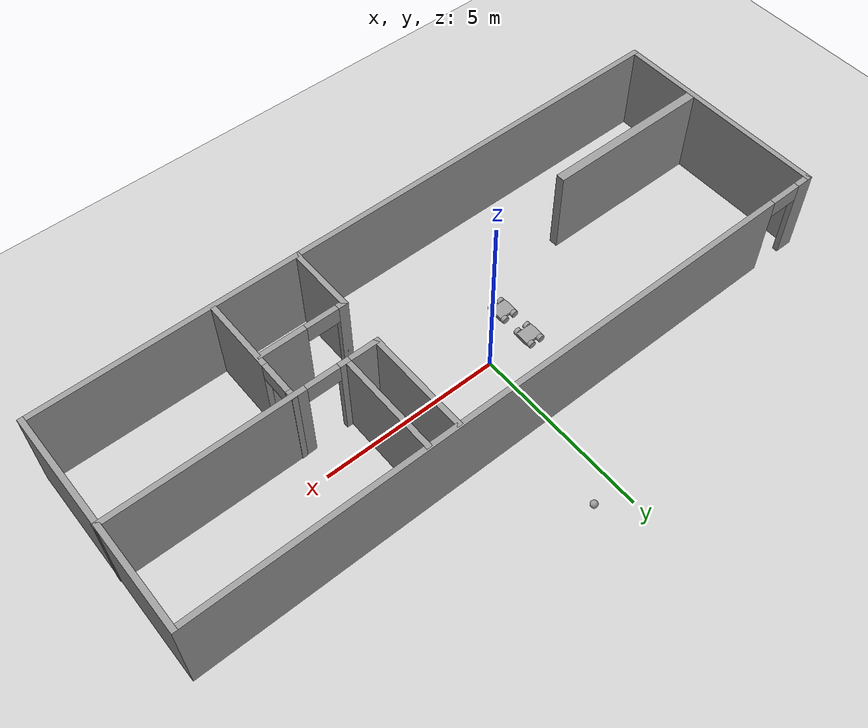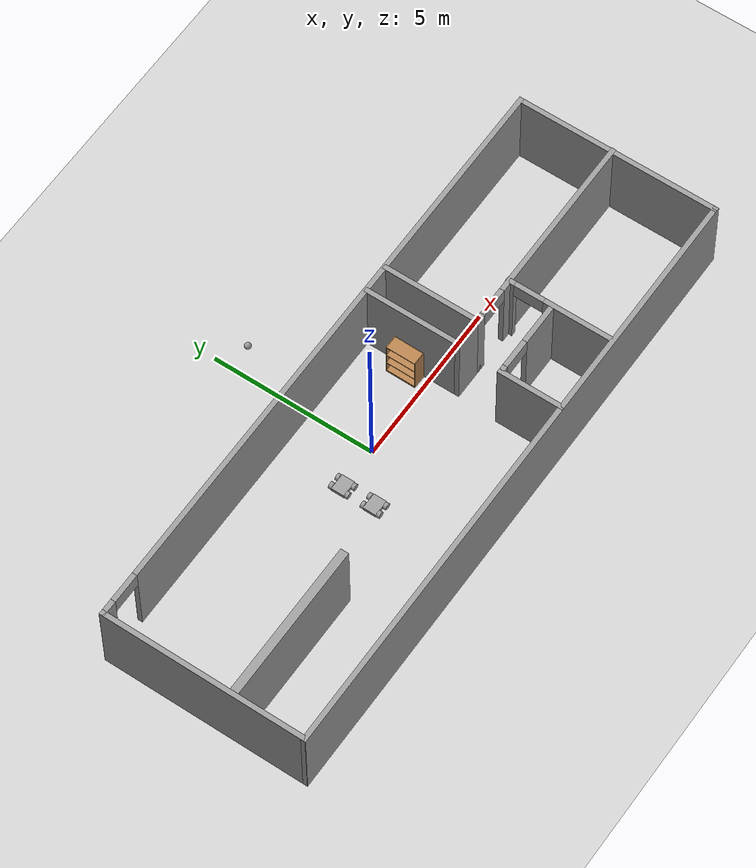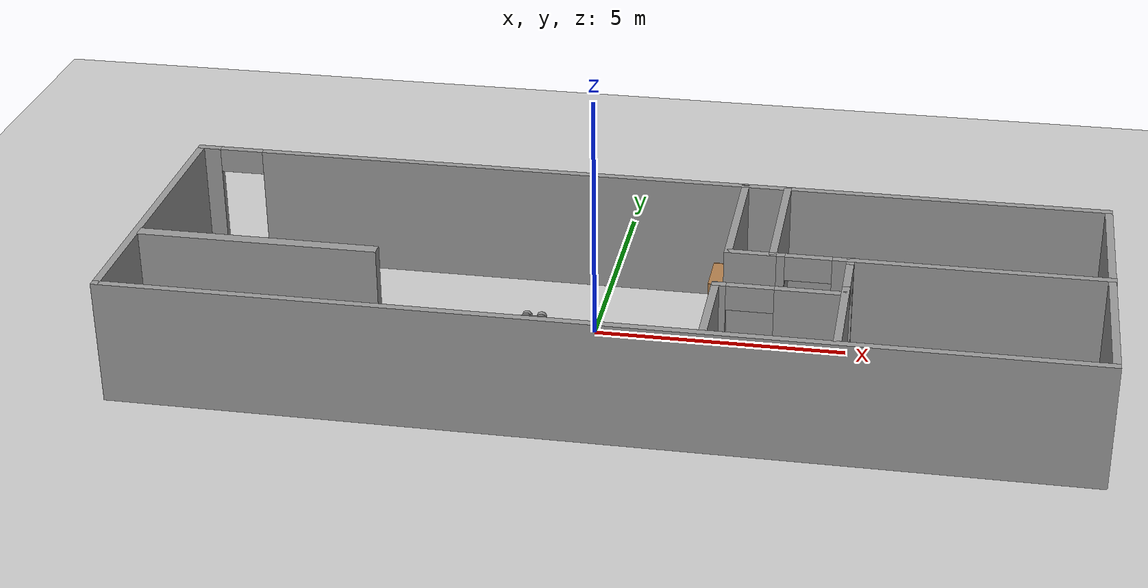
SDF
<sdf version="1.6">
 <world name="default">
  <plugin name="welcome_message" filename="libwelcome_message.so"/>
  <light name="sun" type="directional">
   <pose>0 0 10 0 -0 0</pose>
   <diffuse>0.8 0.8 0.8 1</diffuse>
   <specular>0.2 0.2 0.2 1</specular>
   <attenuation>
    <range>1000</range>
    <constant>0.9</constant>
    <linear>0.01</linear>
    <quadratic>0.001</quadratic>
   </attenuation>
   <direction>-0.5 0.1 -0.9</direction>
  </light>
  <model name="ground_plane">
   <static>1</static>
   <link name="link">
    <collision name="collision">
     <geometry><plane><normal>0 0 1</normal><size>100 100</size></plane></geometry>
     <surface>
      <contact><collide_bitmask>65535</collide_bitmask></contact>
      <friction><ode><mu>100</mu><mu2>50</mu2></ode></friction>
     </surface>
    </collision>
    <visual name="visual">
     <cast_shadows>0</cast_shadows>
     <geometry><plane><normal>0 0 1</normal><size>100 100</size></plane></geometry>
     <material>
      <script><uri>file://media/materials/scripts/gazebo.material</uri><name>Gazebo/Grey</name></script>
     </material>
    </visual>
   </link>
  </model>
  <gravity>0 0 -9.8</gravity>
  <magnetic_field>6e-06 2.3e-05 -4.2e-05</magnetic_field>
  <atmosphere type="adiabatic"/>
  <physics name="default_physics" default="0" type="ode">
   <max_step_size>0.001</max_step_size>
   <real_time_factor>1</real_time_factor>
   <real_time_update_rate>1000</real_time_update_rate>
  </physics>
  <scene><ambient>0.4 0.4 0.4 1</ambient><background>0.7 0.7 0.7 1</background><shadows>1</shadows></scene>
  <spherical_coordinates>
   <surface_model>EARTH_WGS84</surface_model>
   <latitude_deg>0</latitude_deg>
   <longitude_deg>0</longitude_deg>
   <elevation>0</elevation>
   <heading_deg>0</heading_deg>
  </spherical_coordinates>
  <model name="mybuilding">
   <pose>0.62409 -1.00677 0 0 -0 0</pose>
   <link name="Wall_11">
    <collision name="Wall_11_Collision">
     <geometry><box><size>3 0.15 2.5</size></box></geometry>
     <pose>0 0 1.25 0 -0 0</pose>
    </collision>
    <visual name="Wall_11_Visual">
     <pose>0 0 1.25 0 -0 0</pose>
     <geometry><box><size>3 0.15 2.5</size></box></geometry>
     <material>
      <script><uri>file://media/materials/scripts/gazebo.material</uri><name>Gazebo/Grey</name></script>
      <ambient>1 1 1 1</ambient>
     </material>
     <meta><layer>0</layer></meta>
    </visual>
    <pose>2.95755 1.58149 0 0 0 -1.5708</pose>
   </link>
   <link name="Wall_15">
    <pose>6.13255 0.156485 0 0 -0 0</pose>
    <visual name="Wall_15_Visual_0">
     <pose>-3.09582 0 1.25 0 -0 0</pose>
     <geometry><box><size>0.308364 0.15 2.5</size></box></geometry>
     <material>
      <script><uri>file://media/materials/scripts/gazebo.material</uri><name>Gazebo/Grey</name></script>
      <ambient>1 1 1 1</ambient>
     </material>
     <meta><layer>0</layer></meta>
    </visual>
    <collision name="Wall_15_Collision_0">
     <geometry><box><size>0.308364 0.15 2.5</size></box></geometry>
     <pose>-3.09582 0 1.25 0 -0 0</pose>
    </collision>
    <visual name="Wall_15_Visual_1">
     <pose>0.604182 0 1.25 0 -0 0</pose>
     <geometry><box><size>5.29164 0.15 2.5</size></box></geometry>
     <material>
      <script><uri>file://media/materials/scripts/gazebo.material</uri><name>Gazebo/Grey</name></script>
      <ambient>1 1 1 1</ambient>
     </material>
     <meta><layer>0</layer></meta>
    </visual>
    <collision name="Wall_15_Collision_1">
     <geometry><box><size>5.29164 0.15 2.5</size></box></geometry>
     <pose>0.604182 0 1.25 0 -0 0</pose>
    </collision>
    <visual name="Wall_15_Visual_2">
     <pose>-2.49164 0 2.25 0 -0 0</pose>
     <geometry><box><size>0.9 0.15 0.5</size></box></geometry>
     <material>
      <script><uri>file://media/materials/scripts/gazebo.material</uri><name>Gazebo/Grey</name></script>
      <ambient>1 1 1 1</ambient>
     </material>
     <meta><layer>0</layer></meta>
    </visual>
    <collision name="Wall_15_Collision_2">
     <geometry><box><size>0.9 0.15 0.5</size></box></geometry>
     <pose>-2.49164 0 2.25 0 -0 0</pose>
    </collision>
   </link>
   <link name="Wall_19">
    <pose>4.43626 -1.37998 0 0 0 -1.5708</pose>
    <visual name="Wall_19_Visual_0">
     <pose>-1.4913 0 1.25 0 -0 0</pose>
     <geometry><box><size>0.267395 0.15 2.5</size></box></geometry>
     <material>
      <script><uri>file://media/materials/scripts/gazebo.material</uri><name>Gazebo/Grey</name></script>
      <ambient>1 1 1 1</ambient>
     </material>
     <meta><layer>0</layer></meta>
    </visual>
    <collision name="Wall_19_Collision_0">
     <geometry><box><size>0.267395 0.15 2.5</size></box></geometry>
     <pose>-1.4913 0 1.25 0 -0 0</pose>
    </collision>
    <visual name="Wall_19_Visual_1">
     <pose>0.583697 0 1.25 0 -0 0</pose>
     <geometry><box><size>2.08261 0.15 2.5</size></box></geometry>
     <material>
      <script><uri>file://media/materials/scripts/gazebo.material</uri><name>Gazebo/Grey</name></script>
      <ambient>1 1 1 1</ambient>
     </material>
     <meta><layer>0</layer></meta>
    </visual>
    <collision name="Wall_19_Collision_1">
     <geometry><box><size>2.08261 0.15 2.5</size></box></geometry>
     <pose>0.583697 0 1.25 0 -0 0</pose>
    </collision>
    <visual name="Wall_19_Visual_2">
     <pose>-0.907605 0 2.25 0 -0 0</pose>
     <geometry><box><size>0.9 0.15 0.5</size></box></geometry>
     <material>
      <script><uri>file://media/materials/scripts/gazebo.material</uri><name>Gazebo/Grey</name></script>
      <ambient>1 1 1 1</ambient>
     </material>
     <meta><layer>0</layer></meta>
    </visual>
    <collision name="Wall_19_Collision_2">
     <geometry><box><size>0.9 0.15 0.5</size></box></geometry>
     <pose>-0.907605 0 2.25 0 -0 0</pose>
    </collision>
   </link>
   <link name="Wall_21">
    <collision name="Wall_21_Collision">
     <geometry><box><size>1 0.15 2.5</size></box></geometry>
     <pose>0 0 1.25 0 -0 0</pose>
    </collision>
    <visual name="Wall_21_Visual">
     <pose>0 0 1.25 0 -0 0</pose>
     <geometry><box><size>1 0.15 2.5</size></box></geometry>
     <material>
      <script><uri>file://media/materials/scripts/gazebo.material</uri><name>Gazebo/Grey</name></script>
      <ambient>1 1 1 1</ambient>
     </material>
     <meta><layer>0</layer></meta>
    </visual>
    <pose>2.53255 0.156485 0 0 -0 3.14159</pose>
   </link>
   <link name="Wall_22">
    <collision name="Wall_22_Collision">
     <geometry><box><size>3 0.15 2.5</size></box></geometry>
     <pose>0 0 1.25 0 -0 0</pose>
    </collision>
    <visual name="Wall_22_Visual">
     <pose>0 0 1.25 0 -0 0</pose>
     <geometry><box><size>3 0.15 2.5</size></box></geometry>
     <material>
      <script><uri>file://media/materials/scripts/gazebo.material</uri><name>Gazebo/Grey</name></script>
      <ambient>1 1 1 1</ambient>
     </material>
     <meta><layer>0</layer></meta>
    </visual>
    <pose>2.10755 1.58149 0 0 -0 1.5708</pose>
   </link>
   <link name="Wall_3">
    <collision name="Wall_3_Collision">
     <geometry><box><size>6.25 0.15 2.5</size></box></geometry>
     <pose>0 0 1.25 0 -0 0</pose>
    </collision>
    <visual name="Wall_3_Visual">
     <pose>0 0 1.25 0 -0 0</pose>
     <geometry><box><size>6.25 0.15 2.5</size></box></geometry>
     <material>
      <script><uri>file://media/materials/scripts/gazebo.material</uri><name>Gazebo/Grey</name></script>
      <ambient>1 1 1 1</ambient>
     </material>
     <meta><layer>0</layer></meta>
    </visual>
    <pose>-9.30738 0 0 0 0 -1.57085</pose>
   </link>
   <link name="Wall_31">
    <collision name="Wall_31_Collision">
     <geometry><box><size>2 0.15 2.5</size></box></geometry>
     <pose>0 0 1.25 0 -0 0</pose>
    </collision>
    <visual name="Wall_31_Visual">
     <pose>0 0 1.25 0 -0 0</pose>
     <geometry><box><size>2 0.15 2.5</size></box></geometry>
     <material>
      <script><uri>file://media/materials/scripts/gazebo.material</uri><name>Gazebo/Grey</name></script>
      <ambient>1 1 1 1</ambient>
     </material>
     <meta><layer>0</layer></meta>
    </visual>
    <pose>2.03504 -2.11336 0 0 -0 1.5708</pose>
   </link>
   <link name="Wall_32">
    <pose>3.21004 -1.18836 0 0 -0 0</pose>
    <visual name="Wall_32_Visual_0">
     <pose>-1.11393 0 1.25 0 -0 0</pose>
     <geometry><box><size>0.272132 0.15 2.5</size></box></geometry>
     <material>
      <script><uri>file://media/materials/scripts/gazebo.material</uri><name>Gazebo/Grey</name></script>
      <ambient>1 1 1 1</ambient>
     </material>
     <meta><layer>0</layer></meta>
    </visual>
    <collision name="Wall_32_Collision_0">
     <geometry><box><size>0.272132 0.15 2.5</size></box></geometry>
     <pose>-1.11393 0 1.25 0 -0 0</pose>
    </collision>
    <visual name="Wall_32_Visual_1">
     <pose>0.586066 0 1.25 0 -0 0</pose>
     <geometry><box><size>1.32787 0.15 2.5</size></box></geometry>
     <material>
      <script><uri>file://media/materials/scripts/gazebo.material</uri><name>Gazebo/Grey</name></script>
      <ambient>1 1 1 1</ambient>
     </material>
     <meta><layer>0</layer></meta>
    </visual>
    <collision name="Wall_32_Collision_1">
     <geometry><box><size>1.32787 0.15 2.5</size></box></geometry>
     <pose>0.586066 0 1.25 0 -0 0</pose>
    </collision>
    <visual name="Wall_32_Visual_2">
     <pose>-0.527868 0 2.25 0 -0 0</pose>
     <geometry><box><size>0.9 0.15 0.5</size></box></geometry>
     <material>
      <script><uri>file://media/materials/scripts/gazebo.material</uri><name>Gazebo/Grey</name></script>
      <ambient>1 1 1 1</ambient>
     </material>
     <meta><layer>0</layer></meta>
    </visual>
    <collision name="Wall_32_Collision_2">
     <geometry><box><size>0.9 0.15 0.5</size></box></geometry>
     <pose>-0.527868 0 2.25 0 -0 0</pose>
    </collision>
   </link>
   <link name="Wall_34">
    <collision name="Wall_34_Collision">
     <geometry><box><size>4.75 0.25 2.5</size></box></geometry>
     <pose>0 0 1.25 0 -0 0</pose>
    </collision>
    <visual name="Wall_34_Visual">
     <pose>0 0 1.25 0 -0 0</pose>
     <geometry><box><size>4.75 0.25 2.5</size></box></geometry>
     <material>
      <script><uri>file://media/materials/scripts/gazebo.material</uri><name>Gazebo/Grey</name></script>
      <ambient>1 1 1 1</ambient>
     </material>
     <meta><layer>0</layer></meta>
    </visual>
    <pose>-6.87721 -0.888578 0 0 -0 0</pose>
   </link>
   <link name="Wall_5">
    <pose>-0.007205 3.05003 0 0 -0 0</pose>
    <visual name="Wall_5_Visual_0">
     <pose>-9.12701 0 1.25 0 -0 0</pose>
     <geometry><box><size>0.495981 0.15 2.5</size></box></geometry>
     <material>
      <script><uri>file://media/materials/scripts/gazebo.material</uri><name>Gazebo/Grey</name></script>
      <ambient>1 1 1 1</ambient>
     </material>
     <meta><layer>0</layer></meta>
    </visual>
    <collision name="Wall_5_Collision_0">
     <geometry><box><size>0.495981 0.15 2.5</size></box></geometry>
     <pose>-9.12701 0 1.25 0 -0 0</pose>
    </collision>
    <visual name="Wall_5_Visual_1">
     <pose>0.697991 0 1.25 0 -0 0</pose>
     <geometry><box><size>17.354 0.15 2.5</size></box></geometry>
     <material>
      <script><uri>file://media/materials/scripts/gazebo.material</uri><name>Gazebo/Grey</name></script>
      <ambient>1 1 1 1</ambient>
     </material>
     <meta><layer>0</layer></meta>
    </visual>
    <collision name="Wall_5_Collision_1">
     <geometry><box><size>17.354 0.15 2.5</size></box></geometry>
     <pose>0.697991 0 1.25 0 -0 0</pose>
    </collision>
    <visual name="Wall_5_Visual_2">
     <pose>-8.42902 0 2.25 0 -0 0</pose>
     <geometry><box><size>0.9 0.15 0.5</size></box></geometry>
     <material>
      <script><uri>file://media/materials/scripts/gazebo.material</uri><name>Gazebo/Grey</name></script>
      <ambient>1 1 1 1</ambient>
     </material>
     <meta><layer>0</layer></meta>
    </visual>
    <collision name="Wall_5_Collision_2">
     <geometry><box><size>0.9 0.15 0.5</size></box></geometry>
     <pose>-8.42902 0 2.25 0 -0 0</pose>
    </collision>
   </link>
   <link name="Wall_7">
    <collision name="Wall_7_Collision">
     <geometry><box><size>6.25 0.15 2.5</size></box></geometry>
     <pose>0 0 1.25 0 -0 0</pose>
    </collision>
    <visual name="Wall_7_Visual">
     <pose>0 0 1.25 0 -0 0</pose>
     <geometry><box><size>6.25 0.15 2.5</size></box></geometry>
     <material>
      <script><uri>file://media/materials/scripts/gazebo.material</uri><name>Gazebo/Grey</name></script>
      <ambient>1 1 1 1</ambient>
     </material>
     <meta><layer>0</layer></meta>
    </visual>
    <pose>9.29279 2.5e-05 0 0 0 -1.5708</pose>
   </link>
   <link name="Wall_9">
    <collision name="Wall_9_Collision">
     <geometry><box><size>18.75 0.15 2.5</size></box></geometry>
     <pose>0 0 1.25 0 -0 0</pose>
    </collision>
    <visual name="Wall_9_Visual">
     <pose>0 0 1.25 0 -0 0</pose>
     <geometry><box><size>18.75 0.15 2.5</size></box></geometry>
     <material>
      <script><uri>file://media/materials/scripts/gazebo.material</uri><name>Gazebo/Grey</name></script>
      <ambient>1 1 1 1</ambient>
     </material>
     <meta><layer>0</layer></meta>
    </visual>
    <pose>-0.007545 -3.05003 0 0 -0 0</pose>
   </link>
   <static>1</static>
  </model>
  <model name="myrobot">
   <link name="link_0">
    <pose>0 0 0.1 0 -0 0</pose>
    <inertial>
     <mass>1</mass>
     <inertia>
      <ixx>0.166667</ixx>
      <ixy>0</ixy>
      <ixz>0</ixz>
      <iyy>0.166667</iyy>
      <iyz>0</iyz>
      <izz>0.166667</izz>
     </inertia>
    </inertial>
    <visual name="visual">
     <geometry><box><size>0.5 0.4 0.1</size></box></geometry>
     <material>
      <lighting>1</lighting>
      <script><uri>file://media/materials/scripts/gazebo.material</uri><name>Gazebo/Grey</name></script>
      <shader type="pixel"><normal_map>__default__</normal_map></shader>
      <ambient>0.3 0.3 0.3 1</ambient>
      <diffuse>0.7 0.7 0.7 1</diffuse>
      <specular>0.01 0.01 0.01 1</specular>
      <emissive>0 0 0 1</emissive>
     </material>
    </visual>
    <collision name="collision">
     <geometry><box><size>0.5 0.4 0.1</size></box></geometry>
     <surface>
      <friction>
       <ode><mu>1</mu><mu2>1</mu2><fdir1>0 0 0</fdir1><slip1>0</slip1><slip2>0</slip2></ode>
       <torsional>
        <coefficient>1</coefficient>
        <patch_radius>0</patch_radius>
        <surface_radius>0</surface_radius>
        <use_patch_radius>1</use_patch_radius>
        <ode><slip>0</slip></ode>
       </torsional>
      </friction>
      <bounce><restitution_coefficient>0</restitution_coefficient><threshold>1e+06</threshold></bounce>
      <contact>
       <collide_without_contact>0</collide_without_contact>
       <collide_without_contact_bitmask>1</collide_without_contact_bitmask>
       <collide_bitmask>1</collide_bitmask>
       <ode>
        <soft_cfm>0</soft_cfm>
        <soft_erp>0.2</soft_erp>
        <kp>1e+13</kp>
        <kd>1</kd>
        <max_vel>0.01</max_vel>
        <min_depth>0</min_depth>
       </ode>
       <bullet>
        <split_impulse>1</split_impulse>
        <split_impulse_penetration_threshold>-0.01</split_impulse_penetration_threshold>
        <soft_cfm>0</soft_cfm>
        <soft_erp>0.2</soft_erp>
        <kp>1e+13</kp>
        <kd>1</kd>
       </bullet>
      </contact>
     </surface>
    </collision>
   </link>
   <link name="link_3_clone">
    <pose>0.15 -0.25001 0.1 1.5707 -0 0</pose>
    <inertial>
     <mass>1</mass>
     <inertia><ixx>0.145833</ixx><ixy>0</ixy><ixz>0</ixz><iyy>0.145833</iyy><iyz>0</iyz><izz>0.125</izz></inertia>
    </inertial>
    <visual name="visual">
     <geometry><cylinder><radius>0.1</radius><length>0.1</length></cylinder></geometry>
     <material>
      <lighting>1</lighting>
      <script><uri>file://media/materials/scripts/gazebo.material</uri><name>Gazebo/Grey</name></script>
      <shader type="pixel"><normal_map>__default__</normal_map></shader>
      <ambient>0.3 0.3 0.3 1</ambient>
      <diffuse>0.7 0.7 0.7 1</diffuse>
      <specular>0.01 0.01 0.01 1</specular>
      <emissive>0 0 0 1</emissive>
     </material>
    </visual>
    <collision name="collision">
     <geometry><cylinder><radius>0.1</radius><length>0.1</length></cylinder></geometry>
     <surface>
      <friction>
       <ode><mu>1</mu><mu2>1</mu2><fdir1>0 0 0</fdir1><slip1>0</slip1><slip2>0</slip2></ode>
       <torsional>
        <coefficient>1</coefficient>
        <patch_radius>0</patch_radius>
        <surface_radius>0</surface_radius>
        <use_patch_radius>1</use_patch_radius>
        <ode><slip>0</slip></ode>
       </torsional>
      </friction>
      <bounce><restitution_coefficient>0</restitution_coefficient><threshold>1e+06</threshold></bounce>
      <contact>
       <collide_without_contact>0</collide_without_contact>
       <collide_without_contact_bitmask>1</collide_without_contact_bitmask>
       <collide_bitmask>1</collide_bitmask>
       <ode>
        <soft_cfm>0</soft_cfm>
        <soft_erp>0.2</soft_erp>
        <kp>1e+13</kp>
        <kd>1</kd>
        <max_vel>0.01</max_vel>
        <min_depth>0</min_depth>
       </ode>
       <bullet>
        <split_impulse>1</split_impulse>
        <split_impulse_penetration_threshold>-0.01</split_impulse_penetration_threshold>
        <soft_cfm>0</soft_cfm>
        <soft_erp>0.2</soft_erp>
        <kp>1e+13</kp>
        <kd>1</kd>
       </bullet>
      </contact>
     </surface>
    </collision>
   </link>
   <link name="link_3_clone_0">
    <pose>-0.15 0.25001 0.1 1.5707 -0 0</pose>
    <inertial>
     <mass>1</mass>
     <inertia><ixx>0.145833</ixx><ixy>0</ixy><ixz>0</ixz><iyy>0.145833</iyy><iyz>0</iyz><izz>0.125</izz></inertia>
    </inertial>
    <visual name="visual">
     <geometry><cylinder><radius>0.1</radius><length>0.1</length></cylinder></geometry>
     <material>
      <lighting>1</lighting>
      <script><uri>file://media/materials/scripts/gazebo.material</uri><name>Gazebo/Grey</name></script>
      <shader type="pixel"><normal_map>__default__</normal_map></shader>
      <ambient>0.3 0.3 0.3 1</ambient>
      <diffuse>0.7 0.7 0.7 1</diffuse>
      <specular>0.01 0.01 0.01 1</specular>
      <emissive>0 0 0 1</emissive>
     </material>
    </visual>
    <collision name="collision">
     <geometry><cylinder><radius>0.1</radius><length>0.1</length></cylinder></geometry>
     <surface>
      <friction>
       <ode><mu>1</mu><mu2>1</mu2><fdir1>0 0 0</fdir1><slip1>0</slip1><slip2>0</slip2></ode>
       <torsional>
        <coefficient>1</coefficient>
        <patch_radius>0</patch_radius>
        <surface_radius>0</surface_radius>
        <use_patch_radius>1</use_patch_radius>
        <ode><slip>0</slip></ode>
       </torsional>
      </friction>
      <bounce><restitution_coefficient>0</restitution_coefficient><threshold>1e+06</threshold></bounce>
      <contact>
       <collide_without_contact>0</collide_without_contact>
       <collide_without_contact_bitmask>1</collide_without_contact_bitmask>
       <collide_bitmask>1</collide_bitmask>
       <ode>
        <soft_cfm>0</soft_cfm>
        <soft_erp>0.2</soft_erp>
        <kp>1e+13</kp>
        <kd>1</kd>
        <max_vel>0.01</max_vel>
        <min_depth>0</min_depth>
       </ode>
       <bullet>
        <split_impulse>1</split_impulse>
        <split_impulse_penetration_threshold>-0.01</split_impulse_penetration_threshold>
        <soft_cfm>0</soft_cfm>
        <soft_erp>0.2</soft_erp>
        <kp>1e+13</kp>
        <kd>1</kd>
       </bullet>
      </contact>
     </surface>
    </collision>
   </link>
   <link name="link_3_clone_1">
    <pose>0.15 0.25001 0.1 1.5707 -0 0</pose>
    <inertial>
     <mass>1</mass>
     <inertia><ixx>0.145833</ixx><ixy>0</ixy><ixz>0</ixz><iyy>0.145833</iyy><iyz>0</iyz><izz>0.125</izz></inertia>
    </inertial>
    <visual name="visual">
     <geometry><cylinder><radius>0.1</radius><length>0.1</length></cylinder></geometry>
     <material>
      <lighting>1</lighting>
      <script><uri>file://media/materials/scripts/gazebo.material</uri><name>Gazebo/Grey</name></script>
      <shader type="pixel"><normal_map>__default__</normal_map></shader>
      <ambient>0.3 0.3 0.3 1</ambient>
      <diffuse>0.7 0.7 0.7 1</diffuse>
      <specular>0.01 0.01 0.01 1</specular>
      <emissive>0 0 0 1</emissive>
     </material>
    </visual>
    <collision name="collision">
     <geometry><cylinder><radius>0.1</radius><length>0.1</length></cylinder></geometry>
     <surface>
      <friction>
       <ode><mu>1</mu><mu2>1</mu2><fdir1>0 0 0</fdir1><slip1>0</slip1><slip2>0</slip2></ode>
       <torsional>
        <coefficient>1</coefficient>
        <patch_radius>0</patch_radius>
        <surface_radius>0</surface_radius>
        <use_patch_radius>1</use_patch_radius>
        <ode><slip>0</slip></ode>
       </torsional>
      </friction>
      <bounce><restitution_coefficient>0</restitution_coefficient><threshold>1e+06</threshold></bounce>
      <contact>
       <collide_without_contact>0</collide_without_contact>
       <collide_without_contact_bitmask>1</collide_without_contact_bitmask>
       <collide_bitmask>1</collide_bitmask>
       <ode>
        <soft_cfm>0</soft_cfm>
        <soft_erp>0.2</soft_erp>
        <kp>1e+13</kp>
        <kd>1</kd>
        <max_vel>0.01</max_vel>
        <min_depth>0</min_depth>
       </ode>
       <bullet>
        <split_impulse>1</split_impulse>
        <split_impulse_penetration_threshold>-0.01</split_impulse_penetration_threshold>
        <soft_cfm>0</soft_cfm>
        <soft_erp>0.2</soft_erp>
        <kp>1e+13</kp>
        <kd>1</kd>
       </bullet>
      </contact>
     </surface>
    </collision>
   </link>
   <link name="link_3_clone_clone">
    <pose>-0.15 -0.25001 0.1 1.5707 -0 0</pose>
    <inertial>
     <mass>1</mass>
     <inertia><ixx>0.145833</ixx><ixy>0</ixy><ixz>0</ixz><iyy>0.145833</iyy><iyz>0</iyz><izz>0.125</izz></inertia>
    </inertial>
    <visual name="visual">
     <geometry><cylinder><radius>0.1</radius><length>0.1</length></cylinder></geometry>
     <material>
      <lighting>1</lighting>
      <script><uri>file://media/materials/scripts/gazebo.material</uri><name>Gazebo/Grey</name></script>
      <shader type="pixel"><normal_map>__default__</normal_map></shader>
      <ambient>0.3 0.3 0.3 1</ambient>
      <diffuse>0.7 0.7 0.7 1</diffuse>
      <specular>0.01 0.01 0.01 1</specular>
      <emissive>0 0 0 1</emissive>
     </material>
    </visual>
    <collision name="collision">
     <geometry><cylinder><radius>0.1</radius><length>0.1</length></cylinder></geometry>
     <surface>
      <friction>
       <ode><mu>1</mu><mu2>1</mu2><fdir1>0 0 0</fdir1><slip1>0</slip1><slip2>0</slip2></ode>
       <torsional>
        <coefficient>1</coefficient>
        <patch_radius>0</patch_radius>
        <surface_radius>0</surface_radius>
        <use_patch_radius>1</use_patch_radius>
        <ode><slip>0</slip></ode>
       </torsional>
      </friction>
      <bounce><restitution_coefficient>0</restitution_coefficient><threshold>1e+06</threshold></bounce>
      <contact>
       <collide_without_contact>0</collide_without_contact>
       <collide_without_contact_bitmask>1</collide_without_contact_bitmask>
       <collide_bitmask>1</collide_bitmask>
       <ode>
        <soft_cfm>0</soft_cfm>
        <soft_erp>0.2</soft_erp>
        <kp>1e+13</kp>
        <kd>1</kd>
        <max_vel>0.01</max_vel>
        <min_depth>0</min_depth>
       </ode>
       <bullet>
        <split_impulse>1</split_impulse>
        <split_impulse_penetration_threshold>-0.01</split_impulse_penetration_threshold>
        <soft_cfm>0</soft_cfm>
        <soft_erp>0.2</soft_erp>
        <kp>1e+13</kp>
        <kd>1</kd>
       </bullet>
      </contact>
     </surface>
    </collision>
   </link>
   <joint name="link_0_JOINT_1" type="revolute">
    <parent>link_0</parent>
    <child>link_3_clone</child>
    <axis>
     <xyz>1 0 0</xyz>
     <use_parent_model_frame>0</use_parent_model_frame>
     <limit>
      <lower>-1.79769e+308</lower>
      <upper>1.79769e+308</upper>
      <effort>-1</effort>
      <velocity>-1</velocity>
     </limit>
     <dynamics>
      <spring_reference>0</spring_reference>
      <spring_stiffness>0</spring_stiffness>
      <damping>0</damping>
      <friction>0</friction>
     </dynamics>
    </axis>
    <physics>
     <ode><limit><cfm>0</cfm><erp>0.2</erp></limit><suspension><cfm>0</cfm><erp>0.2</erp></suspension></ode>
    </physics>
   </joint>
   <joint name="link_0_JOINT_2" type="revolute">
    <parent>link_0</parent>
    <child>link_3_clone_clone</child>
    <axis>
     <xyz>1 0 0</xyz>
     <use_parent_model_frame>0</use_parent_model_frame>
     <limit>
      <lower>-1.79769e+308</lower>
      <upper>1.79769e+308</upper>
      <effort>-1</effort>
      <velocity>-1</velocity>
     </limit>
     <dynamics>
      <spring_reference>0</spring_reference>
      <spring_stiffness>0</spring_stiffness>
      <damping>0</damping>
      <friction>0</friction>
     </dynamics>
    </axis>
    <physics>
     <ode><limit><cfm>0</cfm><erp>0.2</erp></limit><suspension><cfm>0</cfm><erp>0.2</erp></suspension></ode>
    </physics>
   </joint>
   <joint name="link_0_JOINT_3" type="revolute">
    <parent>link_0</parent>
    <child>link_3_clone_1</child>
    <axis>
     <xyz>1 0 0</xyz>
     <use_parent_model_frame>0</use_parent_model_frame>
     <limit>
      <lower>-1.79769e+308</lower>
      <upper>1.79769e+308</upper>
      <effort>-1</effort>
      <velocity>-1</velocity>
     </limit>
     <dynamics>
      <spring_reference>0</spring_reference>
      <spring_stiffness>0</spring_stiffness>
      <damping>0</damping>
      <friction>0</friction>
     </dynamics>
    </axis>
    <physics>
     <ode><limit><cfm>0</cfm><erp>0.2</erp></limit><suspension><cfm>0</cfm><erp>0.2</erp></suspension></ode>
    </physics>
   </joint>
   <joint name="link_0_JOINT_4" type="revolute">
    <parent>link_0</parent>
    <child>link_3_clone_0</child>
    <axis>
     <xyz>1 0 0</xyz>
     <use_parent_model_frame>0</use_parent_model_frame>
     <limit>
      <lower>-1.79769e+308</lower>
      <upper>1.79769e+308</upper>
      <effort>-1</effort>
      <velocity>-1</velocity>
     </limit>
     <dynamics>
      <spring_reference>0</spring_reference>
      <spring_stiffness>0</spring_stiffness>
      <damping>0</damping>
      <friction>0</friction>
     </dynamics>
    </axis>
    <physics>
     <ode><limit><cfm>0</cfm><erp>0.2</erp></limit><suspension><cfm>0</cfm><erp>0.2</erp></suspension></ode>
    </physics>
   </joint>
   <static>0</static>
   <pose>-1.2934 0.003605 -0 0 -2e-06 -0.000314</pose>
  </model>
  <model name="myrobot_0">
   <link name="link_0">
    <pose>0 0 0.1 0 -0 0</pose>
    <inertial>
     <mass>1</mass>
     <inertia>
      <ixx>0.166667</ixx>
      <ixy>0</ixy>
      <ixz>0</ixz>
      <iyy>0.166667</iyy>
      <iyz>0</iyz>
      <izz>0.166667</izz>
     </inertia>
    </inertial>
    <visual name="visual">
     <geometry><box><size>0.5 0.4 0.1</size></box></geometry>
     <material>
      <lighting>1</lighting>
      <script><uri>file://media/materials/scripts/gazebo.material</uri><name>Gazebo/Grey</name></script>
      <shader type="pixel"><normal_map>__default__</normal_map></shader>
      <ambient>0.3 0.3 0.3 1</ambient>
      <diffuse>0.7 0.7 0.7 1</diffuse>
      <specular>0.01 0.01 0.01 1</specular>
      <emissive>0 0 0 1</emissive>
     </material>
    </visual>
    <collision name="collision">
     <geometry><box><size>0.5 0.4 0.1</size></box></geometry>
     <surface>
      <friction>
       <ode><mu>1</mu><mu2>1</mu2><fdir1>0 0 0</fdir1><slip1>0</slip1><slip2>0</slip2></ode>
       <torsional>
        <coefficient>1</coefficient>
        <patch_radius>0</patch_radius>
        <surface_radius>0</surface_radius>
        <use_patch_radius>1</use_patch_radius>
        <ode><slip>0</slip></ode>
       </torsional>
      </friction>
      <bounce><restitution_coefficient>0</restitution_coefficient><threshold>1e+06</threshold></bounce>
      <contact>
       <collide_without_contact>0</collide_without_contact>
       <collide_without_contact_bitmask>1</collide_without_contact_bitmask>
       <collide_bitmask>1</collide_bitmask>
       <ode>
        <soft_cfm>0</soft_cfm>
        <soft_erp>0.2</soft_erp>
        <kp>1e+13</kp>
        <kd>1</kd>
        <max_vel>0.01</max_vel>
        <min_depth>0</min_depth>
       </ode>
       <bullet>
        <split_impulse>1</split_impulse>
        <split_impulse_penetration_threshold>-0.01</split_impulse_penetration_threshold>
        <soft_cfm>0</soft_cfm>
        <soft_erp>0.2</soft_erp>
        <kp>1e+13</kp>
        <kd>1</kd>
       </bullet>
      </contact>
     </surface>
    </collision>
   </link>
   <link name="link_3_clone">
    <pose>0.15 -0.25001 0.1 1.5707 -0 0</pose>
    <inertial>
     <mass>1</mass>
     <inertia><ixx>0.145833</ixx><ixy>0</ixy><ixz>0</ixz><iyy>0.145833</iyy><iyz>0</iyz><izz>0.125</izz></inertia>
    </inertial>
    <visual name="visual">
     <geometry><cylinder><radius>0.1</radius><length>0.1</length></cylinder></geometry>
     <material>
      <lighting>1</lighting>
      <script><uri>file://media/materials/scripts/gazebo.material</uri><name>Gazebo/Grey</name></script>
      <shader type="pixel"><normal_map>__default__</normal_map></shader>
      <ambient>0.3 0.3 0.3 1</ambient>
      <diffuse>0.7 0.7 0.7 1</diffuse>
      <specular>0.01 0.01 0.01 1</specular>
      <emissive>0 0 0 1</emissive>
     </material>
    </visual>
    <collision name="collision">
     <geometry><cylinder><radius>0.1</radius><length>0.1</length></cylinder></geometry>
     <surface>
      <friction>
       <ode><mu>1</mu><mu2>1</mu2><fdir1>0 0 0</fdir1><slip1>0</slip1><slip2>0</slip2></ode>
       <torsional>
        <coefficient>1</coefficient>
        <patch_radius>0</patch_radius>
        <surface_radius>0</surface_radius>
        <use_patch_radius>1</use_patch_radius>
        <ode><slip>0</slip></ode>
       </torsional>
      </friction>
      <bounce><restitution_coefficient>0</restitution_coefficient><threshold>1e+06</threshold></bounce>
      <contact>
       <collide_without_contact>0</collide_without_contact>
       <collide_without_contact_bitmask>1</collide_without_contact_bitmask>
       <collide_bitmask>1</collide_bitmask>
       <ode>
        <soft_cfm>0</soft_cfm>
        <soft_erp>0.2</soft_erp>
        <kp>1e+13</kp>
        <kd>1</kd>
        <max_vel>0.01</max_vel>
        <min_depth>0</min_depth>
       </ode>
       <bullet>
        <split_impulse>1</split_impulse>
        <split_impulse_penetration_threshold>-0.01</split_impulse_penetration_threshold>
        <soft_cfm>0</soft_cfm>
        <soft_erp>0.2</soft_erp>
        <kp>1e+13</kp>
        <kd>1</kd>
       </bullet>
      </contact>
     </surface>
    </collision>
   </link>
   <link name="link_3_clone_0">
    <pose>-0.15 0.25001 0.1 1.5707 -0 0</pose>
    <inertial>
     <mass>1</mass>
     <inertia><ixx>0.145833</ixx><ixy>0</ixy><ixz>0</ixz><iyy>0.145833</iyy><iyz>0</iyz><izz>0.125</izz></inertia>
    </inertial>
    <visual name="visual">
     <geometry><cylinder><radius>0.1</radius><length>0.1</length></cylinder></geometry>
     <material>
      <lighting>1</lighting>
      <script><uri>file://media/materials/scripts/gazebo.material</uri><name>Gazebo/Grey</name></script>
      <shader type="pixel"><normal_map>__default__</normal_map></shader>
      <ambient>0.3 0.3 0.3 1</ambient>
      <diffuse>0.7 0.7 0.7 1</diffuse>
      <specular>0.01 0.01 0.01 1</specular>
      <emissive>0 0 0 1</emissive>
     </material>
    </visual>
    <collision name="collision">
     <geometry><cylinder><radius>0.1</radius><length>0.1</length></cylinder></geometry>
     <surface>
      <friction>
       <ode><mu>1</mu><mu2>1</mu2><fdir1>0 0 0</fdir1><slip1>0</slip1><slip2>0</slip2></ode>
       <torsional>
        <coefficient>1</coefficient>
        <patch_radius>0</patch_radius>
        <surface_radius>0</surface_radius>
        <use_patch_radius>1</use_patch_radius>
        <ode><slip>0</slip></ode>
       </torsional>
      </friction>
      <bounce><restitution_coefficient>0</restitution_coefficient><threshold>1e+06</threshold></bounce>
      <contact>
       <collide_without_contact>0</collide_without_contact>
       <collide_without_contact_bitmask>1</collide_without_contact_bitmask>
       <collide_bitmask>1</collide_bitmask>
       <ode>
        <soft_cfm>0</soft_cfm>
        <soft_erp>0.2</soft_erp>
        <kp>1e+13</kp>
        <kd>1</kd>
        <max_vel>0.01</max_vel>
        <min_depth>0</min_depth>
       </ode>
       <bullet>
        <split_impulse>1</split_impulse>
        <split_impulse_penetration_threshold>-0.01</split_impulse_penetration_threshold>
        <soft_cfm>0</soft_cfm>
        <soft_erp>0.2</soft_erp>
        <kp>1e+13</kp>
        <kd>1</kd>
       </bullet>
      </contact>
     </surface>
    </collision>
   </link>
   <link name="link_3_clone_1">
    <pose>0.15 0.25001 0.1 1.5707 -0 0</pose>
    <inertial>
     <mass>1</mass>
     <inertia><ixx>0.145833</ixx><ixy>0</ixy><ixz>0</ixz><iyy>0.145833</iyy><iyz>0</iyz><izz>0.125</izz></inertia>
    </inertial>
    <visual name="visual">
     <geometry><cylinder><radius>0.1</radius><length>0.1</length></cylinder></geometry>
     <material>
      <lighting>1</lighting>
      <script><uri>file://media/materials/scripts/gazebo.material</uri><name>Gazebo/Grey</name></script>
      <shader type="pixel"><normal_map>__default__</normal_map></shader>
      <ambient>0.3 0.3 0.3 1</ambient>
      <diffuse>0.7 0.7 0.7 1</diffuse>
      <specular>0.01 0.01 0.01 1</specular>
      <emissive>0 0 0 1</emissive>
     </material>
    </visual>
    <collision name="collision">
     <geometry><cylinder><radius>0.1</radius><length>0.1</length></cylinder></geometry>
     <surface>
      <friction>
       <ode><mu>1</mu><mu2>1</mu2><fdir1>0 0 0</fdir1><slip1>0</slip1><slip2>0</slip2></ode>
       <torsional>
        <coefficient>1</coefficient>
        <patch_radius>0</patch_radius>
        <surface_radius>0</surface_radius>
        <use_patch_radius>1</use_patch_radius>
        <ode><slip>0</slip></ode>
       </torsional>
      </friction>
      <bounce><restitution_coefficient>0</restitution_coefficient><threshold>1e+06</threshold></bounce>
      <contact>
       <collide_without_contact>0</collide_without_contact>
       <collide_without_contact_bitmask>1</collide_without_contact_bitmask>
       <collide_bitmask>1</collide_bitmask>
       <ode>
        <soft_cfm>0</soft_cfm>
        <soft_erp>0.2</soft_erp>
        <kp>1e+13</kp>
        <kd>1</kd>
        <max_vel>0.01</max_vel>
        <min_depth>0</min_depth>
       </ode>
       <bullet>
        <split_impulse>1</split_impulse>
        <split_impulse_penetration_threshold>-0.01</split_impulse_penetration_threshold>
        <soft_cfm>0</soft_cfm>
        <soft_erp>0.2</soft_erp>
        <kp>1e+13</kp>
        <kd>1</kd>
       </bullet>
      </contact>
     </surface>
    </collision>
   </link>
   <link name="link_3_clone_clone">
    <pose>-0.15 -0.25001 0.1 1.5707 -0 0</pose>
    <inertial>
     <mass>1</mass>
     <inertia><ixx>0.145833</ixx><ixy>0</ixy><ixz>0</ixz><iyy>0.145833</iyy><iyz>0</iyz><izz>0.125</izz></inertia>
    </inertial>
    <visual name="visual">
     <geometry><cylinder><radius>0.1</radius><length>0.1</length></cylinder></geometry>
     <material>
      <lighting>1</lighting>
      <script><uri>file://media/materials/scripts/gazebo.material</uri><name>Gazebo/Grey</name></script>
      <shader type="pixel"><normal_map>__default__</normal_map></shader>
      <ambient>0.3 0.3 0.3 1</ambient>
      <diffuse>0.7 0.7 0.7 1</diffuse>
      <specular>0.01 0.01 0.01 1</specular>
      <emissive>0 0 0 1</emissive>
     </material>
    </visual>
    <collision name="collision">
     <geometry><cylinder><radius>0.1</radius><length>0.1</length></cylinder></geometry>
     <surface>
      <friction>
       <ode><mu>1</mu><mu2>1</mu2><fdir1>0 0 0</fdir1><slip1>0</slip1><slip2>0</slip2></ode>
       <torsional>
        <coefficient>1</coefficient>
        <patch_radius>0</patch_radius>
        <surface_radius>0</surface_radius>
        <use_patch_radius>1</use_patch_radius>
        <ode><slip>0</slip></ode>
       </torsional>
      </friction>
      <bounce><restitution_coefficient>0</restitution_coefficient><threshold>1e+06</threshold></bounce>
      <contact>
       <collide_without_contact>0</collide_without_contact>
       <collide_without_contact_bitmask>1</collide_without_contact_bitmask>
       <collide_bitmask>1</collide_bitmask>
       <ode>
        <soft_cfm>0</soft_cfm>
        <soft_erp>0.2</soft_erp>
        <kp>1e+13</kp>
        <kd>1</kd>
        <max_vel>0.01</max_vel>
        <min_depth>0</min_depth>
       </ode>
       <bullet>
        <split_impulse>1</split_impulse>
        <split_impulse_penetration_threshold>-0.01</split_impulse_penetration_threshold>
        <soft_cfm>0</soft_cfm>
        <soft_erp>0.2</soft_erp>
        <kp>1e+13</kp>
        <kd>1</kd>
       </bullet>
      </contact>
     </surface>
    </collision>
   </link>
   <joint name="link_0_JOINT_1" type="revolute">
    <parent>link_0</parent>
    <child>link_3_clone</child>
    <axis>
     <xyz>1 0 0</xyz>
     <use_parent_model_frame>0</use_parent_model_frame>
     <limit>
      <lower>-1.79769e+308</lower>
      <upper>1.79769e+308</upper>
      <effort>-1</effort>
      <velocity>-1</velocity>
     </limit>
     <dynamics>
      <spring_reference>0</spring_reference>
      <spring_stiffness>0</spring_stiffness>
      <damping>0</damping>
      <friction>0</friction>
     </dynamics>
    </axis>
    <physics>
     <ode><limit><cfm>0</cfm><erp>0.2</erp></limit><suspension><cfm>0</cfm><erp>0.2</erp></suspension></ode>
    </physics>
   </joint>
   <joint name="link_0_JOINT_2" type="revolute">
    <parent>link_0</parent>
    <child>link_3_clone_clone</child>
    <axis>
     <xyz>1 0 0</xyz>
     <use_parent_model_frame>0</use_parent_model_frame>
     <limit>
      <lower>-1.79769e+308</lower>
      <upper>1.79769e+308</upper>
      <effort>-1</effort>
      <velocity>-1</velocity>
     </limit>
     <dynamics>
      <spring_reference>0</spring_reference>
      <spring_stiffness>0</spring_stiffness>
      <damping>0</damping>
      <friction>0</friction>
     </dynamics>
    </axis>
    <physics>
     <ode><limit><cfm>0</cfm><erp>0.2</erp></limit><suspension><cfm>0</cfm><erp>0.2</erp></suspension></ode>
    </physics>
   </joint>
   <joint name="link_0_JOINT_3" type="revolute">
    <parent>link_0</parent>
    <child>link_3_clone_1</child>
    <axis>
     <xyz>1 0 0</xyz>
     <use_parent_model_frame>0</use_parent_model_frame>
     <limit>
      <lower>-1.79769e+308</lower>
      <upper>1.79769e+308</upper>
      <effort>-1</effort>
      <velocity>-1</velocity>
     </limit>
     <dynamics>
      <spring_reference>0</spring_reference>
      <spring_stiffness>0</spring_stiffness>
      <damping>0</damping>
      <friction>0</friction>
     </dynamics>
    </axis>
    <physics>
     <ode><limit><cfm>0</cfm><erp>0.2</erp></limit><suspension><cfm>0</cfm><erp>0.2</erp></suspension></ode>
    </physics>
   </joint>
   <joint name="link_0_JOINT_4" type="revolute">
    <parent>link_0</parent>
    <child>link_3_clone_0</child>
    <axis>
     <xyz>1 0 0</xyz>
     <use_parent_model_frame>0</use_parent_model_frame>
     <limit>
      <lower>-1.79769e+308</lower>
      <upper>1.79769e+308</upper>
      <effort>-1</effort>
      <velocity>-1</velocity>
     </limit>
     <dynamics>
      <spring_reference>0</spring_reference>
      <spring_stiffness>0</spring_stiffness>
      <damping>0</damping>
      <friction>0</friction>
     </dynamics>
    </axis>
    <physics>
     <ode><limit><cfm>0</cfm><erp>0.2</erp></limit><suspension><cfm>0</cfm><erp>0.2</erp></suspension></ode>
    </physics>
   </joint>
   <static>0</static>
   <pose>-1.29725 -0.995765 0 0 -1e-06 -0.000491</pose>
  </model>
  <model name="bookshelf">
   <static>1</static>
   <link name="link">
    <inertial><mass>1</mass></inertial>
    <collision name="back">
     <pose>0 0.005 0.6 0 -0 0</pose>
     <geometry><box><size>0.9 0.01 1.2</size></box></geometry>
    </collision>
    <visual name="visual1">
     <pose>0 0.005 0.6 0 -0 0</pose>
     <geometry><box><size>0.9 0.01 1.2</size></box></geometry>
     <material>
      <script><uri>file://media/materials/scripts/gazebo.material</uri><name>Gazebo/Wood</name></script>
     </material>
    </visual>
    <collision name="left_side">
     <pose>0.45 -0.195 0.6 0 -0 0</pose>
     <geometry><box><size>0.02 0.4 1.2</size></box></geometry>
    </collision>
    <visual name="visual2">
     <pose>0.45 -0.195 0.6 0 -0 0</pose>
     <geometry><box><size>0.02 0.4 1.2</size></box></geometry>
     <material>
      <script><uri>file://media/materials/scripts/gazebo.material</uri><name>Gazebo/Wood</name></script>
     </material>
    </visual>
    <collision name="right_side">
     <pose>-0.45 -0.195 0.6 0 -0 0</pose>
     <geometry><box><size>0.02 0.4 1.2</size></box></geometry>
    </collision>
    <visual name="visual3">
     <pose>-0.45 -0.195 0.6 0 -0 0</pose>
     <geometry><box><size>0.02 0.4 1.2</size></box></geometry>
     <material>
      <script><uri>file://media/materials/scripts/gazebo.material</uri><name>Gazebo/Wood</name></script>
     </material>
    </visual>
    <collision name="bottom">
     <pose>0 -0.195 0.03 0 -0 0</pose>
     <geometry><box><size>0.88 0.4 0.06</size></box></geometry>
    </collision>
    <visual name="visual4">
     <pose>0 -0.195 0.03 0 -0 0</pose>
     <geometry><box><size>0.88 0.4 0.06</size></box></geometry>
     <material>
      <script><uri>file://media/materials/scripts/gazebo.material</uri><name>Gazebo/Wood</name></script>
     </material>
    </visual>
    <collision name="top">
     <pose>0 -0.195 1.19 0 -0 0</pose>
     <geometry><box><size>0.88 0.4 0.02</size></box></geometry>
    </collision>
    <visual name="visual5">
     <pose>0 -0.195 1.19 0 -0 0</pose>
     <geometry><box><size>0.88 0.4 0.02</size></box></geometry>
     <material>
      <script><uri>file://media/materials/scripts/gazebo.material</uri><name>Gazebo/Wood</name></script>
     </material>
    </visual>
    <collision name="low_shelf">
     <pose>0 -0.195 0.43 0 -0 0</pose>
     <geometry><box><size>0.88 0.4 0.02</size></box></geometry>
    </collision>
    <visual name="visual6">
     <pose>0 -0.195 0.43 0 -0 0</pose>
     <geometry><box><size>0.88 0.4 0.02</size></box></geometry>
     <material>
      <script><uri>file://media/materials/scripts/gazebo.material</uri><name>Gazebo/Wood</name></script>
     </material>
    </visual>
    <collision name="high_shelf">
     <pose>0 -0.195 0.8 0 -0 0</pose>
     <geometry><box><size>0.88 0.4 0.02</size></box></geometry>
    </collision>
    <visual name="visual7">
     <pose>0 -0.195 0.8 0 -0 0</pose>
     <geometry><box><size>0.88 0.4 0.02</size></box></geometry>
     <material>
      <script><uri>file://media/materials/scripts/gazebo.material</uri><name>Gazebo/Wood</name></script>
     </material>
    </visual>
   </link>
   <pose>2.62759 0.628572 0 0 0 -1.57693</pose>
  </model>
  <audio><device>default</device></audio>
  <model name="my_ball">
   <link name="link_0">
    <inertial>
     <mass>1</mass>
     <inertia><ixx>0.1</ixx><ixy>0</ixy><ixz>0</ixz><iyy>0.1</iyy><iyz>0</iyz><izz>0.1</izz></inertia>
    </inertial>
    <visual name="visual">
     <geometry><sphere><radius>0.1</radius></sphere></geometry>
     <material>
      <lighting>1</lighting>
      <script><uri>file://media/materials/scripts/gazebo.material</uri><name>Gazebo/Grey</name></script>
      <shader type="vertex"><normal_map>__default__</normal_map></shader>
      <ambient>1 1 1 1</ambient>
      <diffuse>1 1 1 1</diffuse>
      <specular>1 1 1 1</specular>
      <emissive>1 1 1 1</emissive>
     </material>
    </visual>
    <collision name="collision">
     <geometry><sphere><radius>0.1</radius></sphere></geometry>
     <surface>
      <friction>
       <ode><mu>1</mu><mu2>1</mu2><fdir1>0 0 0</fdir1><slip1>0</slip1><slip2>0</slip2></ode>
       <torsional>
        <coefficient>1</coefficient>
        <patch_radius>0</patch_radius>
        <surface_radius>0</surface_radius>
        <use_patch_radius>1</use_patch_radius>
        <ode><slip>0</slip></ode>
       </torsional>
      </friction>
      <bounce><restitution_coefficient>0</restitution_coefficient><threshold>1e+06</threshold></bounce>
      <contact>
       <collide_without_contact>0</collide_without_contact>
       <collide_without_contact_bitmask>1</collide_without_contact_bitmask>
       <collide_bitmask>1</collide_bitmask>
       <ode>
        <soft_cfm>0</soft_cfm>
        <soft_erp>0.2</soft_erp>
        <kp>1e+13</kp>
        <kd>1</kd>
        <max_vel>0.01</max_vel>
        <min_depth>0</min_depth>
       </ode>
       <bullet>
        <split_impulse>1</split_impulse>
        <split_impulse_penetration_threshold>-0.01</split_impulse_penetration_threshold>
        <soft_cfm>0</soft_cfm>
        <soft_erp>0.2</soft_erp>
        <kp>1e+13</kp>
        <kd>1</kd>
       </bullet>
      </contact>
     </surface>
    </collision>
   </link>
   <static>0</static>
   <pose>0.764994 4.48673 0.1 0 -0 0</pose>
  </model>
 </world>
</sdf>
